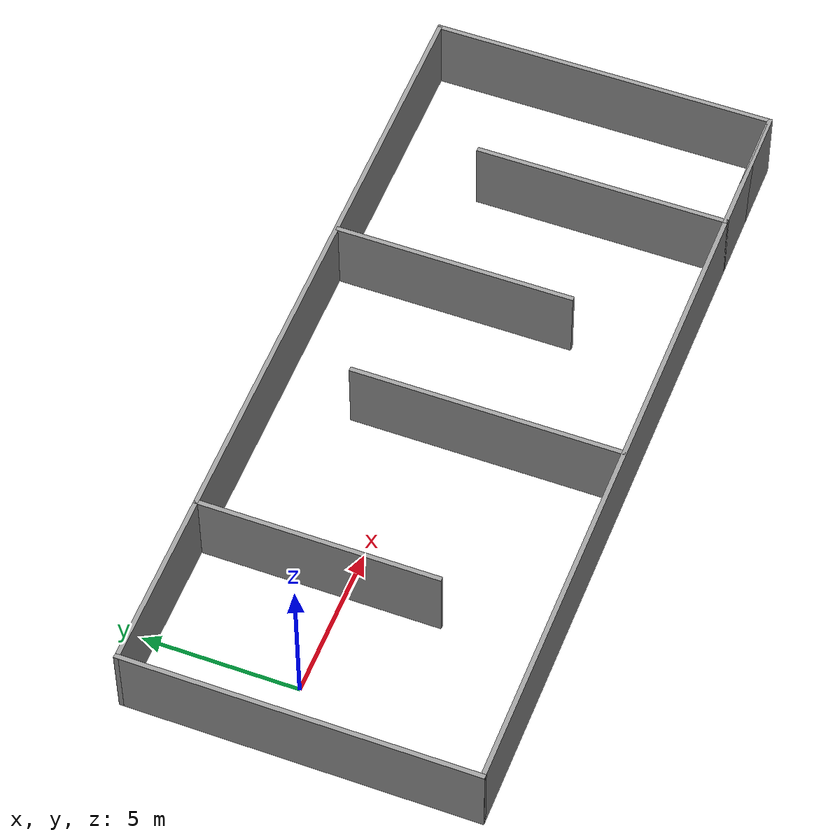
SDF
<?xml version='1.0'?>
<sdf version='1.7'>
  <model name='mygo.world'>
    <pose>10.5615 -0.923226 0 0 -0 0</pose>
    <link name='Wall_12'>
      <collision name='Wall_12_Collision'>
        <geometry>
          <box>
            <size>7.75 0.15 2.5</size>
          </box>
        </geometry>
        <pose>0 0 1.25 0 -0 0</pose>
      </collision>
      <visual name='Wall_12_Visual'>
        <pose>0 0 1.25 0 -0 0</pose>
        <geometry>
          <box>
            <size>7.75 0.15 2.5</size>
          </box>
        </geometry>
        <material>
          <script>
            <uri>file://media/materials/scripts/gazebo.material</uri>
            <name>Gazebo/Grey</name>
          </script>
          <ambient>1 1 1 1</ambient>
        </material>
        <meta>
          <layer>0</layer>
        </meta>
      </visual>
      <pose>-7.06394 1.74474 0 0 -0 -1.5708</pose>
    </link>
    <link name='Wall_14'>
      <collision name='Wall_14_Collision'>
        <geometry>
          <box>
            <size>8.75 0.15 2.5</size>
          </box>
        </geometry>
        <pose>0 0 1.25 0 -0 0</pose>
      </collision>
      <visual name='Wall_14_Visual'>
        <pose>0 0 1.25 0 -0 0</pose>
        <geometry>
          <box>
            <size>8.75 0.15 2.5</size>
          </box>
        </geometry>
        <material>
          <script>
            <uri>file://media/materials/scripts/gazebo.material</uri>
            <name>Gazebo/Grey</name>
          </script>
          <ambient>1 1 1 1</ambient>
        </material>
        <meta>
          <layer>0</layer>
        </meta>
      </visual>
      <pose>-0.957459 -1.21169 0 0 -0 1.5708</pose>
    </link>
    <link name='Wall_16'>
      <collision name='Wall_16_Collision'>
        <geometry>
          <box>
            <size>7.75 0.15 2.5</size>
          </box>
        </geometry>
        <pose>0 0 1.25 0 -0 0</pose>
      </collision>
      <visual name='Wall_16_Visual'>
        <pose>0 0 1.25 0 -0 0</pose>
        <geometry>
          <box>
            <size>7.75 0.15 2.5</size>
          </box>
        </geometry>
        <material>
          <script>
            <uri>file://media/materials/scripts/gazebo.material</uri>
            <name>Gazebo/Grey</name>
          </script>
          <ambient>1 1 1 1</ambient>
        </material>
        <meta>
          <layer>0</layer>
        </meta>
      </visual>
      <pose>3.9231 1.67535 0 0 -0 -1.5708</pose>
    </link>
    <link name='Wall_18'>
      <collision name='Wall_18_Collision'>
        <geometry>
          <box>
            <size>8.25 0.15 2.5</size>
          </box>
        </geometry>
        <pose>0 0 1.25 0 -0 0</pose>
      </collision>
      <visual name='Wall_18_Visual'>
        <pose>0 0 1.25 0 -0 0</pose>
        <geometry>
          <box>
            <size>8.25 0.15 2.5</size>
          </box>
        </geometry>
        <material>
          <script>
            <uri>file://media/materials/scripts/gazebo.material</uri>
            <name>Gazebo/Grey</name>
          </script>
          <ambient>1 1 1 1</ambient>
        </material>
        <meta>
          <layer>0</layer>
        </meta>
      </visual>
      <pose>8.45 -1.5 0 0 -0 1.5708</pose>
    </link>
    <link name='Wall_4'>
      <collision name='Wall_4_Collision'>
        <geometry>
          <box>
            <size>11.25 0.15 2.5</size>
          </box>
        </geometry>
        <pose>0 0 1.25 0 -0 0</pose>
      </collision>
      <visual name='Wall_4_Visual'>
        <pose>0 0 1.25 0 -0 0</pose>
        <geometry>
          <box>
            <size>11.25 0.15 2.5</size>
          </box>
        </geometry>
        <material>
          <script>
            <uri>file://media/materials/scripts/gazebo.material</uri>
            <name>Gazebo/Grey</name>
          </script>
          <ambient>1 1 1 1</ambient>
        </material>
        <meta>
          <layer>0</layer>
        </meta>
      </visual>
      <pose>-12.8 -0 0 0 -0 -1.5708</pose>
    </link>
    <link name='Wall_5'>
      <collision name='Wall_5_Collision'>
        <geometry>
          <box>
            <size>25.5 0.15 2.5</size>
          </box>
        </geometry>
        <pose>0 0 1.25 0 -0 0</pose>
      </collision>
      <visual name='Wall_5_Visual'>
        <pose>0 0 1.25 0 -0 0</pose>
        <geometry>
          <box>
            <size>25.5 0.15 2.5</size>
          </box>
        </geometry>
        <material>
          <script>
            <uri>file://media/materials/scripts/gazebo.material</uri>
            <name>Gazebo/Grey</name>
          </script>
          <ambient>1 1 1 1</ambient>
        </material>
        <meta>
          <layer>0</layer>
        </meta>
      </visual>
      <pose>-0.125 -5.55 0 0 -0 0</pose>
    </link>
    <link name='Wall_7'>
      <collision name='Wall_7_Collision'>
        <geometry>
          <box>
            <size>25.75 0.15 2.5</size>
          </box>
        </geometry>
        <pose>0 0 1.25 0 -0 0</pose>
      </collision>
      <visual name='Wall_7_Visual'>
        <pose>0 0 1.25 0 -0 0</pose>
        <geometry>
          <box>
            <size>25.75 0.15 2.5</size>
          </box>
        </geometry>
        <material>
          <script>
            <uri>file://media/materials/scripts/gazebo.material</uri>
            <name>Gazebo/Grey</name>
          </script>
          <ambient>1 1 1 1</ambient>
        </material>
        <meta>
          <layer>0</layer>
        </meta>
      </visual>
      <pose>0 5.55 0 0 -0 0</pose>
    </link>
    <link name='Wall_8'>
      <collision name='Wall_8_Collision'>
        <geometry>
          <box>
            <size>11.25 0.15 2.5</size>
          </box>
        </geometry>
        <pose>0 0 1.25 0 -0 0</pose>
      </collision>
      <visual name='Wall_8_Visual'>
        <pose>0 0 1.25 0 -0 0</pose>
        <geometry>
          <box>
            <size>11.25 0.15 2.5</size>
          </box>
        </geometry>
        <material>
          <script>
            <uri>file://media/materials/scripts/gazebo.material</uri>
            <name>Gazebo/Grey</name>
          </script>
          <ambient>1 1 1 1</ambient>
        </material>
        <meta>
          <layer>0</layer>
        </meta>
      </visual>
      <pose>12.8 -0 0 0 -0 -1.5708</pose>
    </link>
    <link name='Wall_9'>
      <collision name='Wall_9_Collision'>
        <geometry>
          <box>
            <size>4.5 0.15 2.5</size>
          </box>
        </geometry>
        <pose>0 0 1.25 0 -0 0</pose>
      </collision>
      <visual name='Wall_9_Visual'>
        <pose>0 0 1.25 0 -0 0</pose>
        <geometry>
          <box>
            <size>4.5 0.15 2.5</size>
          </box>
        </geometry>
        <material>
          <script>
            <uri>file://media/materials/scripts/gazebo.material</uri>
            <name>Gazebo/Grey</name>
          </script>
          <ambient>1 1 1 1</ambient>
        </material>
        <meta>
          <layer>0</layer>
        </meta>
      </visual>
      <pose>10.625 -5.55 0 0 -0 3.14159</pose>
    </link>
    <static>1</static>
  </model>
</sdf>
